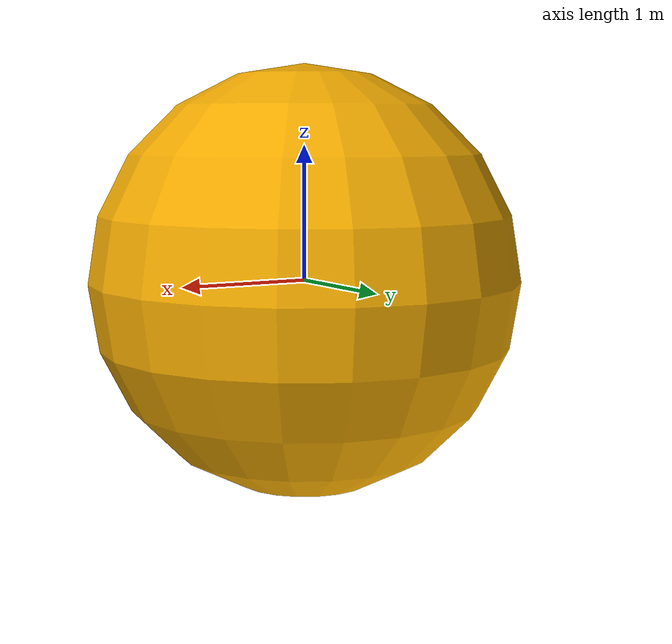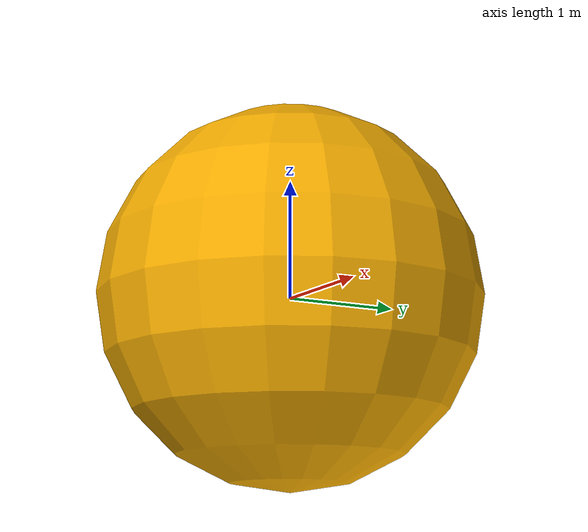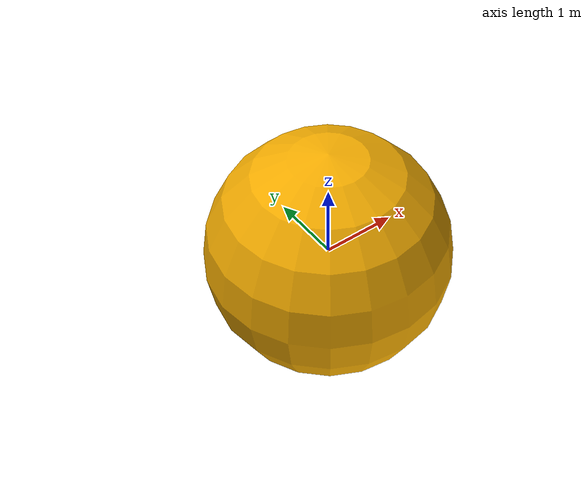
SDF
<?xml version="1.0"?>
<sdf version="1.6">
  <model name="StackOfObjects">
    <!-- All spheres in the stack have a density of ρ=1000 kg/m³ (density of
         water at 1 atm and 3.98 °C). The inertia for a sphere of radius R and
         mass m is computed as: I = 2/5*m R².  -->
    <link name="Object1">
      <pose>0 0 0 0 0 0</pose>
      <inertial>
        <pose>0 0 0.0 0 0 0</pose>
        <mass>8.0</mass>
        <inertia>
          <ixx>0.032</ixx>
          <iyy>0.032</iyy>
          <izz>0.032</izz>
          <ixy>0</ixy>
          <ixz>0</ixz>
          <iyz>0</iyz>
        </inertia>
      </inertial>

      <visual name="visual">
        <pose>0.0 0.0 0.0 0 0 0</pose>
        <geometry>
          <sphere>
            <radius>0.1</radius>
          </sphere>
        </geometry>
        <material>
          <diffuse>1 0 0 1</diffuse>
        </material>
      </visual>
      <collision name="collision">
        <pose>0.0 0.0 0.0 0 0 0</pose>
        <geometry>
          <sphere>
            <radius>0.1</radius>
          </sphere>
        </geometry>
        <drake:proximity_properties>
          <drake:point_contact_stiffness>
          1.0e16</drake:point_contact_stiffness>
          <drake:hunt_crossley_dissipation>0.0
          </drake:hunt_crossley_dissipation>
          <drake:mu_dynamic>0.5</drake:mu_dynamic>
          <drake:mu_static>0.5</drake:mu_static>
        </drake:proximity_properties>
      </collision>
    </link>

    <link name="Object2">
      <pose>0 0 0 0 0 0</pose>
      <inertial>
        <pose>0 0 0 0 0 0</pose>
        <mass>64.0</mass>
        <inertia>
          <ixx>1.024</ixx>
          <iyy>1.024</iyy>
          <izz>1.024</izz>
          <ixy>0</ixy>
          <ixz>0</ixz>
          <iyz>0</iyz>
        </inertia>
      </inertial>

      <visual name="visual">
        <pose>0.0 0.0 0.0 0 0 0</pose>
        <geometry>
          <sphere>
            <radius>0.2</radius>
          </sphere>
        </geometry>
        <material>
          <diffuse>0 1 0 1</diffuse>
        </material>
      </visual>
      <collision name="collision">
        <pose>0.0 0.0 0.0 0 0 0</pose>
        <geometry>
          <sphere>
            <radius>0.2</radius>
          </sphere>
        </geometry>
        <drake:proximity_properties>
          <drake:point_contact_stiffness>
          1.0e16</drake:point_contact_stiffness>
          <drake:hunt_crossley_dissipation>0.0
          </drake:hunt_crossley_dissipation>
          <drake:mu_dynamic>0.5</drake:mu_dynamic>
          <drake:mu_static>0.5</drake:mu_static>
        </drake:proximity_properties>
      </collision>
    </link>

    <link name="Object3">
      <pose>0 0 0 0 0 0</pose>
      <inertial>
        <pose>0 0 0 0 0 0</pose>
        <mass>512.0</mass>
        <inertia>
          <ixx>32.768</ixx>
          <iyy>32.768</iyy>
          <izz>32.768</izz>
          <ixy>0</ixy>
          <ixz>0</ixz>
          <iyz>0</iyz>
        </inertia>
      </inertial>

      <visual name="visual">
        <pose>0.0 0.0 0.0 0 0 0</pose>
        <geometry>
          <sphere>
            <radius>0.4</radius>
          </sphere>
        </geometry>
        <material>
          <diffuse>0 0 1 1</diffuse>
        </material>
      </visual>
      <collision name="collision">
        <pose>0.0 0.0 0.0 0 0 0</pose>
        <geometry>
          <sphere>
            <radius>0.4</radius>
          </sphere>
        </geometry>
        <drake:proximity_properties>
          <drake:point_contact_stiffness>
          1.0e16</drake:point_contact_stiffness>
          <drake:hunt_crossley_dissipation>0.0
          </drake:hunt_crossley_dissipation>
          <drake:mu_dynamic>0.5</drake:mu_dynamic>
          <drake:mu_static>0.5</drake:mu_static>
        </drake:proximity_properties>
      </collision>
    </link>

    <link name="Object4">
      <pose>0 0 0 0 0 0</pose>
      <inertial>
        <pose>0 0 0 0 0 0</pose>
        <mass>4096.0</mass>
        <inertia>
          <ixx>1048.576</ixx>
          <iyy>1048.576</iyy>
          <izz>1048.576</izz>
          <ixy>0</ixy>
          <ixz>0</ixz>
          <iyz>0</iyz>
        </inertia>
      </inertial>

      <visual name="visual">
        <pose>0.0 0.0 0.0 0 0 0</pose>
        <geometry>
          <sphere>
            <radius>0.8</radius>
          </sphere>
        </geometry>
        <material>
          <diffuse>0.99 0 0.5 1</diffuse>
        </material>
      </visual>
      <collision name="collision">
        <pose>0.0 0.0 0.0 0 0 0</pose>
        <geometry>
          <sphere>
            <radius>0.8</radius>
          </sphere>
        </geometry>
        <drake:proximity_properties>
          <drake:point_contact_stiffness>
          1.0e16</drake:point_contact_stiffness>
          <drake:hunt_crossley_dissipation>0.0
          </drake:hunt_crossley_dissipation>
          <drake:mu_dynamic>0.5</drake:mu_dynamic>
          <drake:mu_static>0.5</drake:mu_static>
        </drake:proximity_properties>
      </collision>
    </link>

    <link name="Object5">
      <pose>0 0 0 0 0 0</pose>
      <inertial>
        <pose>0 0 0 0 0 0</pose>
        <mass>32768.0</mass>
        <inertia>
          <ixx>33554.432</ixx>
          <iyy>33554.432</iyy>
          <izz>33554.432</izz>
          <ixy>0</ixy>
          <ixz>0</ixz>
          <iyz>0</iyz>
        </inertia>
      </inertial>

      <visual name="visual">
        <pose>0.0 0.0 0.0 0 0 0</pose>
        <geometry>
          <sphere>
            <radius>1.6</radius>
          </sphere>
        </geometry>
        <material>
          <diffuse>0.95 0.67 0 1</diffuse>
        </material>
      </visual>
      <collision name="collision">
        <pose>0.0 0.0 0.0 0 0 0</pose>
        <geometry>
          <sphere>
            <radius>1.6</radius>
          </sphere>
        </geometry>
        <drake:proximity_properties>
          <drake:point_contact_stiffness>
          1.0e16</drake:point_contact_stiffness>
          <drake:hunt_crossley_dissipation>0.0
          </drake:hunt_crossley_dissipation>
          <drake:mu_dynamic>0.5</drake:mu_dynamic>
          <drake:mu_static>0.5</drake:mu_static>
        </drake:proximity_properties>
      </collision>
    </link>

  </model>
</sdf>
